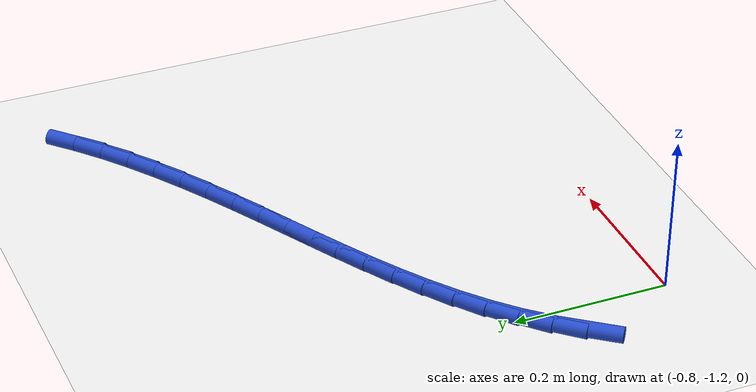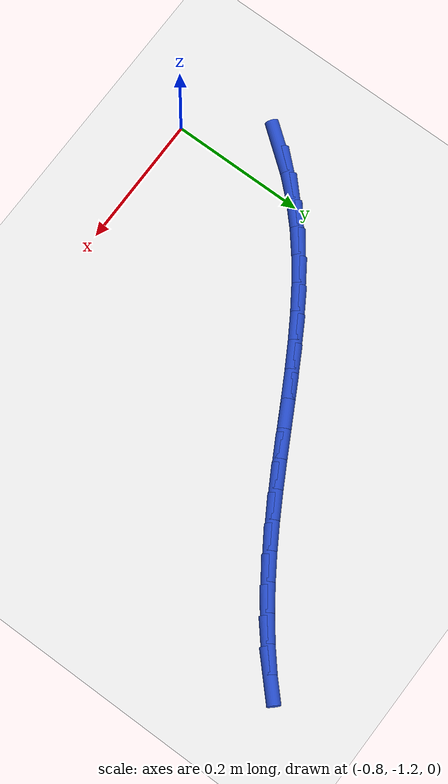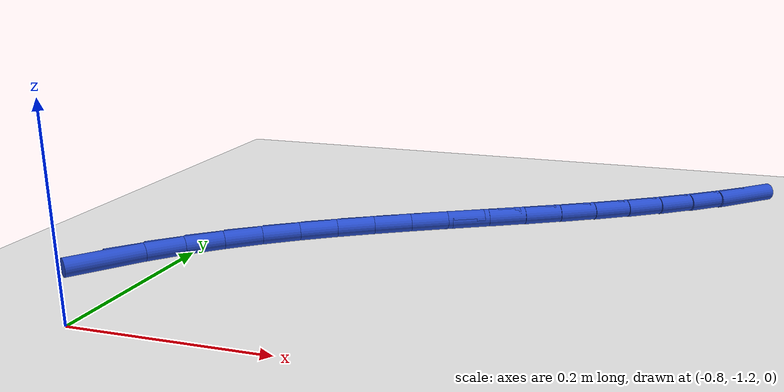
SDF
<sdf version="1.6">
 <world name="default">
  <model name="ground_plane">
   <static>1</static>
   <link name="link">
    <collision name="collision">
     <geometry><plane><normal>0 0 1</normal><size>100 100</size></plane></geometry>
     <surface><friction><ode><mu>100</mu><mu2>50</mu2></ode></friction></surface>
    </collision>
    <visual name="visual">
     <cast_shadows>0</cast_shadows>
     <geometry><plane><normal>0 0 1</normal><size>100 100</size></plane></geometry>
     <material>
      <script><uri>file://media/materials/scripts/gazebo.material</uri><name>Gazebo/WhiteGlow</name></script>
     </material>
    </visual>
   </link>
  </model>
  <model name="line">
   <link name="link_185">
    <pose>-0.8572253466798597 -1.0700649428080844 0.01 0 1.57 0.9144492391593094</pose>
    <collision name="collision">
     <geometry><cylinder><radius>0.01</radius><length>0.08</length></cylinder></geometry>
    </collision>
    <visual name="visual">
     <material>
      <script><name>Gazebo/Blue</name><uri>file://media/materials/scripts/gazebo.material</uri></script>
     </material>
     <geometry><cylinder><radius>0.01</radius><length>0.08</length></cylinder></geometry>
    </visual>
   </link>
   <link name="link_186">
    <pose>-0.831958203366319 -1.037261897967664 0.01 0 1.57 0.8309836121961799</pose>
    <collision name="collision">
     <geometry><cylinder><radius>0.01</radius><length>0.08</length></cylinder></geometry>
    </collision>
    <visual name="visual">
     <material>
      <script><name>Gazebo/Blue</name><uri>file://media/materials/scripts/gazebo.material</uri></script>
     </material>
     <geometry><cylinder><radius>0.01</radius><length>0.08</length></cylinder></geometry>
    </visual>
   </link>
   <link name="link_187">
    <pose>-0.8042913298057357 -1.0069502135663075 0.01 0 1.57 0.7560007105518312</pose>
    <collision name="collision">
     <geometry><cylinder><radius>0.01</radius><length>0.08</length></cylinder></geometry>
    </collision>
    <visual name="visual">
     <material>
      <script><name>Gazebo/Blue</name><uri>file://media/materials/scripts/gazebo.material</uri></script>
     </material>
     <geometry><cylinder><radius>0.01</radius><length>0.08</length></cylinder></geometry>
    </visual>
   </link>
   <link name="link_188">
    <pose>-0.7744871853333062 -0.978848834534627 0.01 0 1.57 0.6904944189929109</pose>
    <collision name="collision">
     <geometry><cylinder><radius>0.01</radius><length>0.08</length></cylinder></geometry>
    </collision>
    <visual name="visual">
     <material>
      <script><name>Gazebo/Blue</name><uri>file://media/materials/scripts/gazebo.material</uri></script>
     </material>
     <geometry><cylinder><radius>0.01</radius><length>0.08</length></cylinder></geometry>
    </visual>
   </link>
   <link name="link_189">
    <pose>-0.7428082292842275 -0.9526767058032357 0.01 0 1.57 0.6349001001143221</pose>
    <collision name="collision">
     <geometry><cylinder><radius>0.01</radius><length>0.08</length></cylinder></geometry>
    </collision>
    <visual name="visual">
     <material>
      <script><name>Gazebo/Blue</name><uri>file://media/materials/scripts/gazebo.material</uri></script>
     </material>
     <geometry><cylinder><radius>0.01</radius><length>0.08</length></cylinder></geometry>
    </visual>
   </link>
   <link name="link_190">
    <pose>-0.7095169209936961 -0.9281527723027462 0.01 0 1.57 0.5892538085582582</pose>
    <collision name="collision">
     <geometry><cylinder><radius>0.01</radius><length>0.08</length></cylinder></geometry>
    </collision>
    <visual name="visual">
     <material>
      <script><name>Gazebo/Blue</name><uri>file://media/materials/scripts/gazebo.material</uri></script>
     </material>
     <geometry><cylinder><radius>0.01</radius><length>0.08</length></cylinder></geometry>
    </visual>
   </link>
   <link name="link_191">
    <pose>-0.6748757197969107 -0.9049959789637727 0.01 0 1.57 0.5533555496632566</pose>
    <collision name="collision">
     <geometry><cylinder><radius>0.01</radius><length>0.08</length></cylinder></geometry>
    </collision>
    <visual name="visual">
     <material>
      <script><name>Gazebo/Blue</name><uri>file://media/materials/scripts/gazebo.material</uri></script>
     </material>
     <geometry><cylinder><radius>0.01</radius><length>0.08</length></cylinder></geometry>
    </visual>
   </link>
   <link name="link_192">
    <pose>-0.6391470850290675 -0.8829252707169277 0.01 0 1.57 0.5269048817035711</pose>
    <collision name="collision">
     <geometry><cylinder><radius>0.01</radius><length>0.08</length></cylinder></geometry>
    </collision>
    <visual name="visual">
     <material>
      <script><name>Gazebo/Blue</name><uri>file://media/materials/scripts/gazebo.material</uri></script>
     </material>
     <geometry><cylinder><radius>0.01</radius><length>0.08</length></cylinder></geometry>
    </visual>
   </link>
   <link name="link_193">
    <pose>-0.6025934760253638 -0.8616595924928243 0.01 0 1.57 0.5095992435162306</pose>
    <collision name="collision">
     <geometry><cylinder><radius>0.01</radius><length>0.08</length></cylinder></geometry>
    </collision>
    <visual name="visual">
     <material>
      <script><name>Gazebo/Blue</name><uri>file://media/materials/scripts/gazebo.material</uri></script>
     </material>
     <geometry><cylinder><radius>0.01</radius><length>0.08</length></cylinder></geometry>
    </visual>
   </link>
   <link name="link_194">
    <pose>-0.5654773521209966 -0.8409178892220762 0.01 0 1.57 0.5011978133179205</pose>
    <collision name="collision">
     <geometry><cylinder><radius>0.01</radius><length>0.08</length></cylinder></geometry>
    </collision>
    <visual name="visual">
     <material>
      <script><name>Gazebo/Blue</name><uri>file://media/materials/scripts/gazebo.material</uri></script>
     </material>
     <geometry><cylinder><radius>0.01</radius><length>0.08</length></cylinder></geometry>
    </visual>
   </link>
   <link name="link_195">
    <pose>-0.5280611726511617 -0.8204191058352946 0.01 0 1.57 0.5015578938064563</pose>
    <collision name="collision">
     <geometry><cylinder><radius>0.01</radius><length>0.08</length></cylinder></geometry>
    </collision>
    <visual name="visual">
     <material>
      <script><name>Gazebo/Blue</name><uri>file://media/materials/scripts/gazebo.material</uri></script>
     </material>
     <geometry><cylinder><radius>0.01</radius><length>0.08</length></cylinder></geometry>
    </visual>
   </link>
   <link name="link_196">
    <pose>-0.49060739695105876 -0.7998821872630951 0.01 0 1.57 0.5106502119887776</pose>
    <collision name="collision">
     <geometry><cylinder><radius>0.01</radius><length>0.08</length></cylinder></geometry>
    </collision>
    <visual name="visual">
     <material>
      <script><name>Gazebo/Blue</name><uri>file://media/materials/scripts/gazebo.material</uri></script>
     </material>
     <geometry><cylinder><radius>0.01</radius><length>0.08</length></cylinder></geometry>
    </visual>
   </link>
   <link name="link_197">
    <pose>-0.45337848435588357 -0.7790260784360898 0.01 0 1.57 0.5280959407356839</pose>
    <collision name="collision">
     <geometry><cylinder><radius>0.01</radius><length>0.08</length></cylinder></geometry>
    </collision>
    <visual name="visual">
     <material>
      <script><name>Gazebo/Blue</name><uri>file://media/materials/scripts/gazebo.material</uri></script>
     </material>
     <geometry><cylinder><radius>0.01</radius><length>0.08</length></cylinder></geometry>
    </visual>
   </link>
   <link name="link_198">
    <pose>-0.41662799057844946 -0.7575872317635839 0.01 0 1.57 0.5516613687656738</pose>
    <collision name="collision">
     <geometry><cylinder><radius>0.01</radius><length>0.08</length></cylinder></geometry>
    </collision>
    <visual name="visual">
     <material>
      <script><name>Gazebo/Blue</name><uri>file://media/materials/scripts/gazebo.material</uri></script>
     </material>
     <geometry><cylinder><radius>0.01</radius><length>0.08</length></cylinder></geometry>
    </visual>
   </link>
   <link name="link_199">
    <pose>-0.3805631564309231 -0.7353931701317292 0.01 0 1.57 0.580772281918312</pose>
    <collision name="collision">
     <geometry><cylinder><radius>0.01</radius><length>0.08</length></cylinder></geometry>
    </collision>
    <visual name="visual">
     <material>
      <script><name>Gazebo/Blue</name><uri>file://media/materials/scripts/gazebo.material</uri></script>
     </material>
     <geometry><cylinder><radius>0.01</radius><length>0.08</length></cylinder></geometry>
    </visual>
   </link>
   <link name="link_200">
    <pose>-0.3453762106662366 -0.7123009351209703 0.01 0 1.57 0.6156576080278613</pose>
    <collision name="collision">
     <geometry><cylinder><radius>0.01</radius><length>0.08</length></cylinder></geometry>
    </collision>
    <visual name="visual">
     <material>
      <script><name>Gazebo/Blue</name><uri>file://media/materials/scripts/gazebo.material</uri></script>
     </material>
     <geometry><cylinder><radius>0.01</radius><length>0.08</length></cylinder></geometry>
    </visual>
   </link>
   <link name="link_201">
    <pose>-0.3112593742784912 -0.688167583568182 0.01 0 1.57 0.6565501034355218</pose>
    <collision name="collision">
     <geometry><cylinder><radius>0.01</radius><length>0.08</length></cylinder></geometry>
    </collision>
    <visual name="visual">
     <material>
      <script><name>Gazebo/Blue</name><uri>file://media/materials/scripts/gazebo.material</uri></script>
     </material>
     <geometry><cylinder><radius>0.01</radius><length>0.08</length></cylinder></geometry>
    </visual>
   </link>
   <link name="link_202">
    <pose>-0.278404868261789 -0.6628501723102402 0.01 0 1.57 0.7036513399225852</pose>
    <collision name="collision">
     <geometry><cylinder><radius>0.01</radius><length>0.08</length></cylinder></geometry>
    </collision>
    <visual name="visual">
     <material>
      <script><name>Gazebo/Blue</name><uri>file://media/materials/scripts/gazebo.material</uri></script>
     </material>
     <geometry><cylinder><radius>0.01</radius><length>0.08</length></cylinder></geometry>
    </visual>
   </link>
   <link name="link_203">
    <pose>-0.24700491361023139 -0.6362057581840204 0.01 0 1.57 0.7570855006353507</pose>
    <collision name="collision">
     <geometry><cylinder><radius>0.01</radius><length>0.08</length></cylinder></geometry>
    </collision>
    <visual name="visual">
     <material>
      <script><name>Gazebo/Blue</name><uri>file://media/materials/scripts/gazebo.material</uri></script>
     </material>
     <geometry><cylinder><radius>0.01</radius><length>0.08</length></cylinder></geometry>
    </visual>
   </link>
  </model>
 </world>
</sdf>
